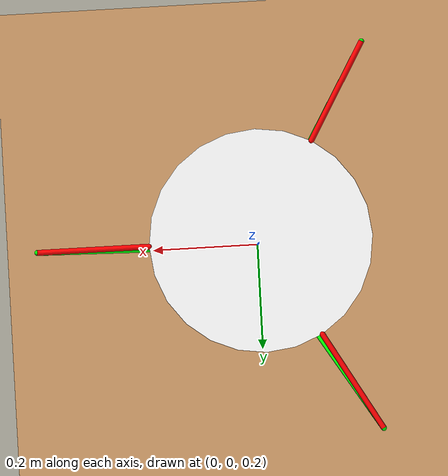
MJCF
<mujoco model="scrab scene">
  <include file="scrab.xml" />

  <statistic center="0.3 0 0.4" extent="0.8" />

  <visual>
    <headlight diffuse="0.6 0.6 0.6" ambient="0.1 0.1 0.1" specular="0 0 0" />
    <rgba haze="0.15 0.25 0.35 1" />
    <global azimuth="120" elevation="-20" />
  </visual>

  <asset>
    <texture type="skybox" builtin="gradient" rgb1="1 1 1" rgb2="0.6 0.8 1" width="512"
      height="3072" />
    <texture type="2d" name="groundplane" builtin="checker" mark="edge" rgb1="0.2 0.3 0.4"
      rgb2="0.1 0.2 0.3"
      markrgb="0.8 0.8 0.8" width="300" height="300" />
    <material name="groundplane" texture="groundplane" texuniform="true" texrepeat="5 5"
      reflectance="0" />
  </asset>

  <worldbody>
    <light pos="0 0 1.5" dir="0 0 -1" directional="true" />
    <geom name="floor" size="0.5 0.5 0.05" type="plane" material="groundplane" />
  </worldbody>
</mujoco>

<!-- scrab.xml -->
<mujoco model="scrab">
  <option gravity="0 0 -9.81" timestep="0.002" integrator="implicitfast" />
  <default>
    <geom rgba=".8 .6 .4 1" />
    <joint damping="0.5" armature="0.05" />
  </default>

  <worldbody>
    <light diffuse=".5 .5 .5" pos="0 0 3" dir="0 0 -1" />

    <!-- end effector -->
    <body name="end_effector" pos="0 0 0.18" euler="0 0 0">
      <geom type="cylinder" size="0.08 0.002" rgba="1 1 1 1" />
      <joint name="end_effector_free" type="free" />
    </body>

    <!-- body del robot -->
    <body pos="0 0 0">
      <geom name="base" type="cylinder" size="0.2 0.002" pos="0 0 0.5" rgba="1 1 1 1" />

      <!-- brazo 1 -->
      <body name="bicep1_base" pos="0.3 0 0.5" euler="0 0 0">
        <body name="bicep1" euler="0 90 0">
          <joint name="bicep_joint1" type="hinge" pos="0 0 -0.1" axis="0 -1 0" />
          <geom type="capsule" size="0.005 0.1" rgba="1 0 0 1" />
          <body name="antebrazo1" pos="0.159 0 -0.059" euler="0 -45 0">
            <joint name="virtual_joint1" type="hinge" pos="0 0 0.225" axis="0 -1 0" />
            <geom type="capsule" size="0.005 0.225" rgba="0 1 0 1" />

            <geom type="sphere" size="0.01" pos="0 0 -0.225" rgba="1 0 0 1" />
          </body>
        </body>
      </body>

      <!-- brazo 2 -->
      <body name="bicep2_base" pos="-0.15 0.259808 0.5" euler="0 0 120">
        <body name="bicep2" euler="0 90 0">
          <joint name="bicep_joint2" type="hinge" pos="0 0 -0.1" axis="0 -1 0" />
          <geom type="capsule" size="0.005 0.1" rgba="1 0 0 1" />
          <body name="antebrazo2" pos="0.159 0 -0.059" euler="0 -45 0">
            <joint name="virtual_joint2" type="hinge" pos="0 0 0.225" axis="0 -1 0" />
            <geom type="capsule" size="0.005 0.225" rgba="0 1 0 1" />
            <geom type="sphere" size="0.01" pos="0 0 -0.225" rgba="1 0 0 1" />
          </body>
        </body>
      </body>

      <!-- brazo 3 -->
      <body name="bicep3_base" pos="-0.15 -0.259808 0.5" euler="0 0 240">
        <body name="bicep3" euler="0 90 0">
          <joint name="bicep_joint3" type="hinge" pos="0 0 -0.1" axis="0 -1 0" />
          <geom type="capsule" size="0.005 0.1" rgba="1 0 0 1" />
          <body name="antebrazo3" pos="0.159 0 -0.059" euler="0 -45 0">
            <joint name="virtual_joint3" type="hinge" pos="0 0 0.225" axis="0 -1 0" />
            <geom type="capsule" size="0.005 0.225" rgba="0 1 0 1" />
            <geom type="sphere" size="0.01" pos="0 0 -0.225" rgba="1 0 0 1" />
          </body>
        </body>
      </body>

    </body>
  </worldbody>

  <actuator>
    <position name="actuador1" joint="bicep_joint1" kp="2" ctrlrange="-1.57 1.1" />
    <position name="actuador2" joint="bicep_joint2" kp="2" ctrlrange="-1.57 1.1" />
    <position name="actuador3" joint="bicep_joint3" kp="2" ctrlrange="-1.57 1.1" />
  </actuator>

  <equality>
    <connect body1="antebrazo1" body2="end_effector" anchor="0 0 -0.225"
      solref="0.01 1" solimp="0.999 0.9999 0.001" />
    <connect body1="antebrazo2" body2="end_effector" anchor="0 0 -0.225"
      solref="0.01 1" solimp="0.999 0.9999 0.001" />
    <connect body1="antebrazo3" body2="end_effector" anchor="0 0 -0.225"
      solref="0.01 1" solimp="0.999 0.9999 0.001" />
  </equality>

</mujoco>
